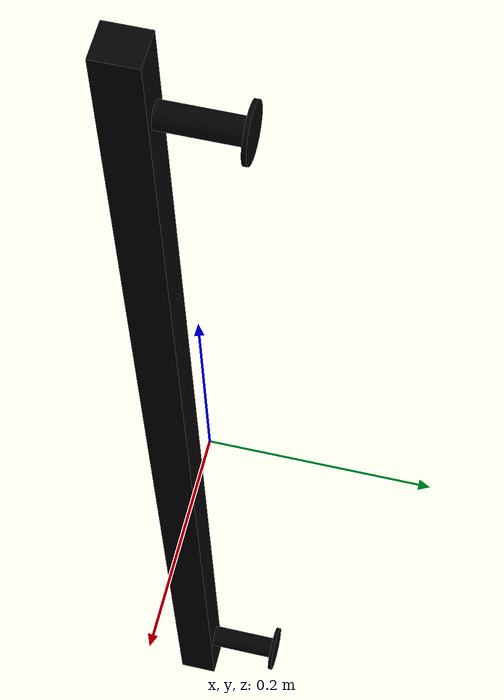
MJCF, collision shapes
<?xml version="1.0" ?>
<mujoco model="model">
    <compiler angle="radian"/>
    <asset>
        <mesh file="visuals/CabinetHandle029.obj" name="mesh"/>
        <texture file="visuals/T_BC001.png" name="tex" type="2d"/>
        <material name="mat" rgba="1 1 1 1.0" texture="tex" shininess="0.5999999940395355" specular="0.8"/>
    </asset>
    <default>
        <default class="visual">
            <geom conaffinity="0" contype="0" group="1" type="mesh"/>
        </default>
        <default class="collision">
            <geom group="0" rgba="0 0 0 0"/>
        </default>
        <default class="spawn">
            <geom group="0" rgba="0 0 0 0" contype="0" conaffinity="0"/>
            <site group="0" rgba="0 0 0 0"/>
        </default>
    </default>
    <worldbody>
        <body>
            <body name="object">
                <geom mesh="mesh" type="mesh" solimp="0.998 0.998 0.001" solref="0.001 1" density="100" friction="0.95 0.3 0.1" class="visual" material="mat"/>
                <geom class="collision" type="box" pos="1.7507880329503678e-05 -0.034541189670562744 1.9064249499933794e-05" size="0.5351306200027466 0.018585536628961563 0.016708076000213623" quat="0.7071068286895752 -0.0 0.7071067690849304 0.0"/>
                <geom class="collision" type="cylinder" pos="1.952052116394043e-05 0.014784444123506546 -0.4674508571624756" size="0.010716565884649754 0.03486405685544014" quat="0.4999999701976776 0.5000000596046448 0.4999999403953552 -0.5"/>
                <geom class="collision" type="cylinder" pos="1.952052116394043e-05 0.051293328404426575 -0.4674508571624756" size="0.023220378905534744 0.0017810611752793193" quat="0.4999999701976776 0.5000000596046448 0.4999999403953552 -0.5" name="handle_connector"/>
                <geom class="collision" type="cylinder" pos="1.9550323486328125e-05 0.014784444123506546 0.4674488306045532" size="0.010716565884649754 0.03486405685544014" quat="0.4999999701976776 0.5000000596046448 0.4999999403953552 -0.5"/>
                <geom class="collision" type="cylinder" pos="1.9550323486328125e-05 0.051293328404426575 0.4674488306045532" size="0.023220378905534744 0.0017810611752793193" quat="0.4999999701976776 0.5000000596046448 0.4999999403953552 -0.5"/>
            </body>
        </body>
    </worldbody>
    <actuator/>
</mujoco>
